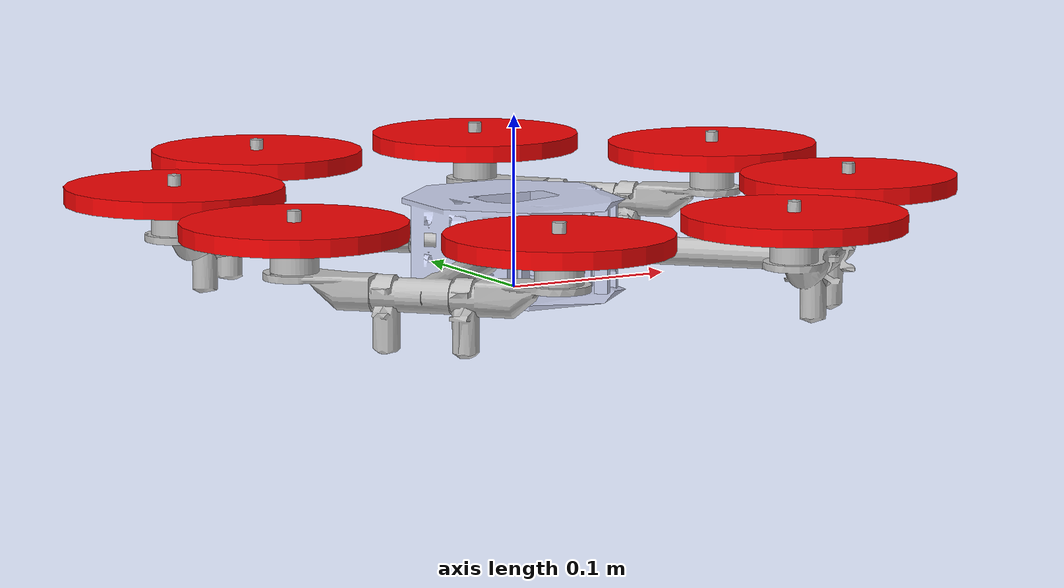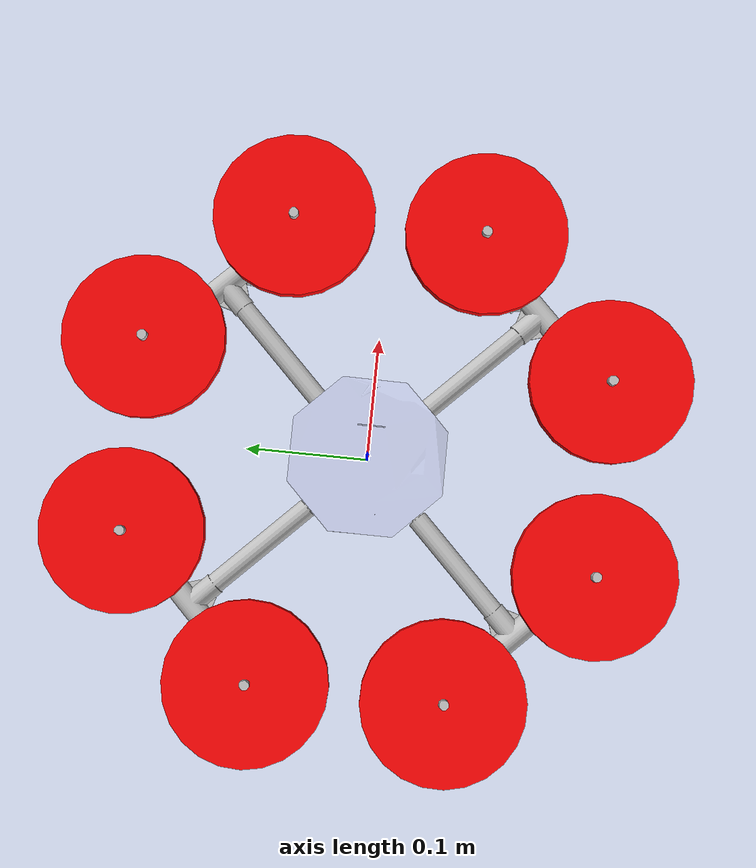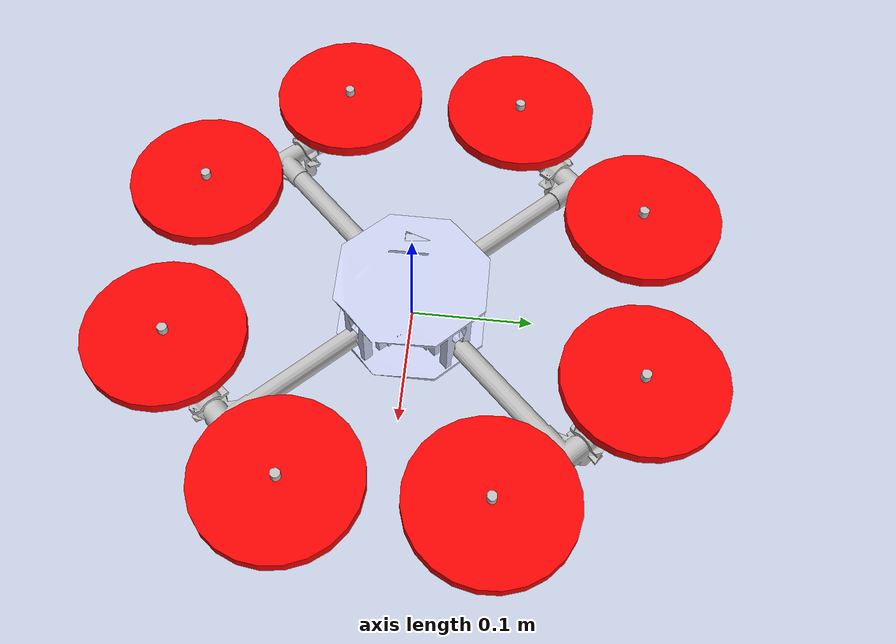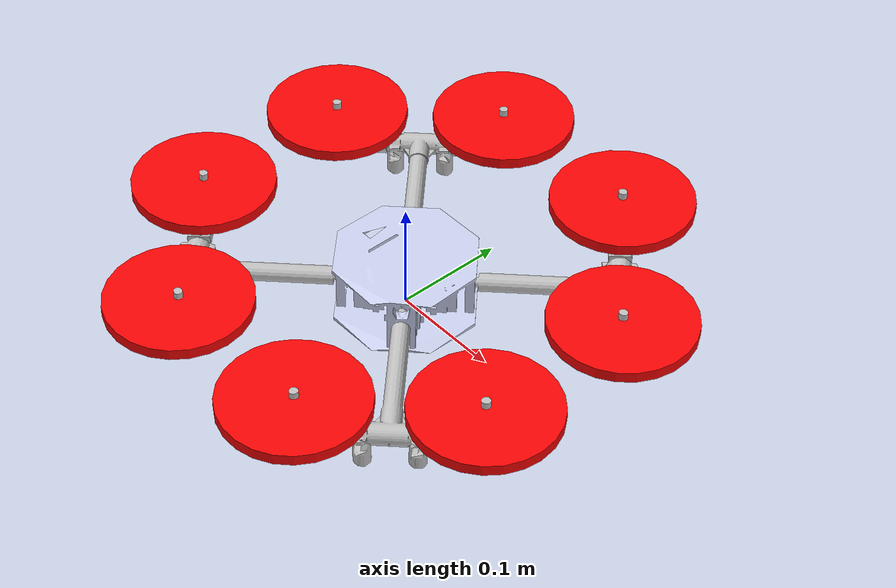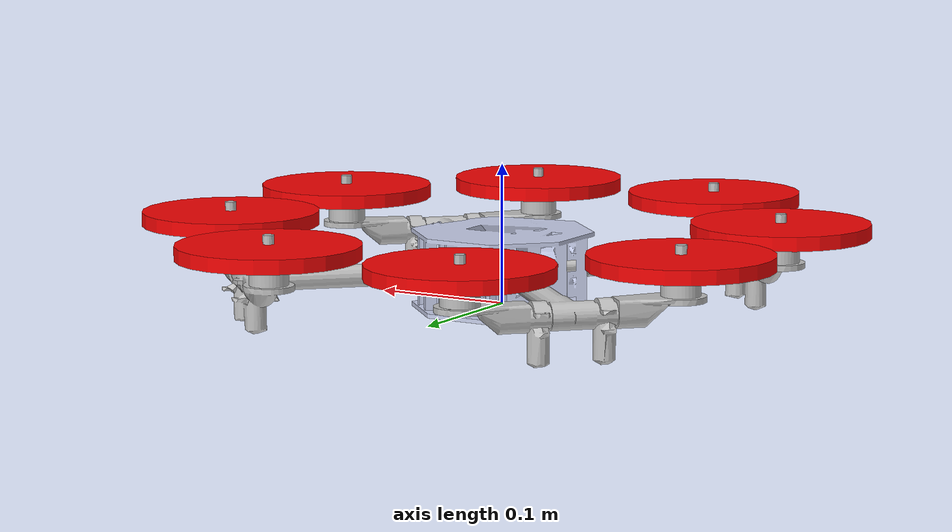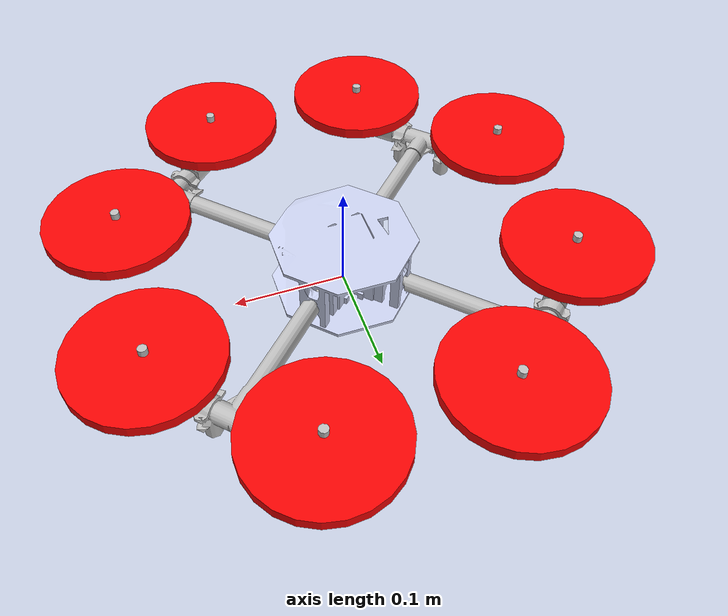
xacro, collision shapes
<?xml version="1.0"?>
<robot name="swing_drone" xmlns:xacro="http://www.ros.org/wiki/xacro">

  <!-- Dummy map link as root to avoid KDL parser warning -->
  <link name="map">
  </link>

  <!-- Fixed joint connecting map to base_link -->
  <joint name="map_to_base" type="fixed">
    <parent link="map"/>
    <child link="base_link"/>
    <origin xyz="0 0 0" rpy="0 0 0"/>
  </joint>

  <link
    name="base_link">
    <inertial>
      <origin
        xyz="0 0.0307 0"
        rpy="0 0 0" />
      <mass
        value="0.49" />
      <inertia
        ixx="0.0055"
        ixy="0"
        ixz="0"
        iyy="0.01067"
        iyz="0"
        izz="0.0055" />
    </inertial>
    <visual>
      <origin
        xyz="0 0 0"
        rpy="3.14159 0 0" />
      <geometry>
        <mesh
          filename="package://swing_drone/meshes/base_link.STL" />
      </geometry>
      <material
        name="">
        <color
          rgba="0.792156862745098 0.819607843137255 0.933333333333333 1" />
      </material>
    </visual>
    <collision>
      <origin
        xyz="0 0 0"
        rpy="3.14159 0 0" />
      <geometry>
        <mesh
          filename="package://swing_drone/meshes/base_link_new.STL" />
      </geometry>
    </collision>
  </link>

  <link
    name="imu_link">
    <inertial>
      <origin xyz="0 0 0" rpy="0 0 0"/>
      <mass value="0.001"/>
      <inertia ixx="1e-6" ixy="0" ixz="0" iyy="1e-6" iyz="0" izz="1e-6"/>
    </inertial>
    <visual>
      <origin
        xyz="0 0 0"
        rpy="0 0 0" />
      <geometry>
        <box
          size="0.01 0.01 0.01" />
      </geometry>
    </visual>
  </link>

  <joint
    name="imu_joint"
    type="fixed">
    <parent
      link="base_link" />
    <child
      link="imu_link" />
    <origin
      xyz="0 0 0.01"
      rpy="0 0 0" />
    <axis
      xyz="0 0 0" />
  </joint>

  <link
    name="fr_link">
    <inertial>
      <origin
        xyz="0 0.00839 -0.16975"
        rpy="0 0 0" />
      <mass
        value="0.0713" />
      <inertia
        ixx="0.00001"
        ixy="0"
        ixz="0"
        iyy="0.00001"
        iyz="0"
        izz="0.00001" />
    </inertial>
    <visual>
      <origin
        xyz="0 0 0"
        rpy="0 0 0" />
      <geometry>
        <mesh
          filename="package://swing_drone/meshes/arm.STL" />
      </geometry>
      <material
        name="">
        <color
          rgba="0.752941176470588 0.752941176470588 0.752941176470588 1" />
      </material>
    </visual>
    <collision>
      <origin
        xyz="0 0 0"
        rpy="0 0 0" />
      <geometry>
        <mesh
          filename="package://swing_drone/meshes/low_face_arm.STL" />
      </geometry>
    </collision>
  </link>
  <joint
    name="fr_joint"
    type="continuous">
    <origin
      xyz="0 0 0.025"
      rpy="1.5708 0 2.3562" />
    <parent
      link="base_link" />
    <child
      link="fr_link" />
    <axis
      xyz="0 0 1" />
  </joint>
  <link
    name="A_prop_link">
    <inertial>
      <origin
        xyz="0 0 0.0069037"
        rpy="0 0 0" />
      <mass
        value="0.0030458" />
      <inertia
        ixx="0.00001"
        ixy="0"
        ixz="0"
        iyy="0.00001"
        iyz="0"
        izz="0.00001" />
    </inertial>
    <visual>
      <origin
        xyz="0 0 0"
        rpy="0 0 0" />
      <geometry>
        <mesh
          filename="package://swing_drone/meshes/CCW_prop.STL" />
      </geometry>
      <material
        name="">
        <color
          rgba="0.96863 0.015686 0.015686 1" />
      </material>
    </visual>
    <collision>
      <origin
        xyz="0 0 0"
        rpy="0 0 0" />
      <geometry>
        <cylinder radius="0.0635" length="0.01" />
      </geometry>
    </collision>
  </link>
  <joint
    name="A_prop_joint"
    type="continuous">
    <origin
      xyz="-0.075 0.032789 -0.18136"
      rpy="-1.5708 0.28363 0" />
    <parent
      link="fr_link" />
    <child
      link="A_prop_link" />
    <axis
      xyz="0 0 1" />
  </joint>
  <link
    name="B_prop_link">
    <inertial>
      <origin
        xyz="0 0 0.0069036"
        rpy="0 0 0" />
      <mass
        value="0.0030461" />
      <inertia
        ixx="0.00001"
        ixy="0"
        ixz="0"
        iyy="0.00001"
        iyz="0"
        izz="0.00001" />
    </inertial>
    <visual>
      <origin
        xyz="0 0 0"
        rpy="0 0 0" />
      <geometry>
        <mesh
          filename="package://swing_drone/meshes/CW_prop.STL" />
      </geometry>
      <material
        name="">
        <color
          rgba="0.96863 0.015686 0.015686 1" />
      </material>
    </visual>
    <collision>
      <origin
        xyz="0 0 0"
        rpy="0 0 0" />
      <geometry>
        <cylinder radius="0.0635" length="0.01" />
      </geometry>
    </collision>
  </link>
  <joint
    name="B_prop_joint"
    type="continuous">
    <origin
      xyz="0.075 0.032789 -0.18136"
      rpy="-1.5708 -0.94937 0" />
    <parent
      link="fr_link" />
    <child
      link="B_prop_link" />
    <axis
      xyz="0 0 1" />
  </joint>
  <link
    name="br_link">
    <inertial>
      <origin
        xyz="0 0.00838518216887453 -0.169743641529002"
        rpy="0 0 0" />
      <mass
        value="0.0713" />
      <inertia
        ixx="0.00001"
        ixy="0"
        ixz="0"
        iyy="0.00001"
        iyz="0"
        izz="0.00001" />
    </inertial>
    <visual>
      <origin
        xyz="0 0 0"
        rpy="0 0 0" />
      <geometry>
        <mesh
          filename="package://swing_drone/meshes/arm.STL" />
      </geometry>
      <material
        name="">
        <color
          rgba="0.752941176470588 0.752941176470588 0.752941176470588 1" />
      </material>
    </visual>
    <collision>
      <origin
        xyz="0 0 0"
        rpy="0 0 0" />
      <geometry>
        <mesh
          filename="package://swing_drone/meshes/low_face_arm.STL" />
      </geometry>
    </collision>
  </link>
  <joint
    name="br_joint"
    type="continuous">
    <origin
      xyz="0 0 0.025"
      rpy="1.5707963267949 0 0.785398163397444" />
    <parent
      link="base_link" />
    <child
      link="br_link" />
    <axis
      xyz="0 0 1" />
  </joint>
  <link
    name="C_prop_link">
    <inertial>
      <origin
        xyz="0 0 0.00690354838979317"
        rpy="0 0 0" />
      <mass
        value="0.00304576429500371" />
      <inertia
        ixx="0.00001"
        ixy="0"
        ixz="0"
        iyy="0.00001"
        iyz="0"
        izz="0.00001" />
    </inertial>
    <visual>
      <origin
        xyz="0 0 0"
        rpy="0 0 0" />
      <geometry>
        <mesh
          filename="package://swing_drone/meshes/CCW_prop.STL" />
      </geometry>
      <material
        name="">
        <color
          rgba="0.968627450980392 0.0156862745098039 0.0156862745098039 1" />
      </material>
    </visual>
    <collision>
      <origin
        xyz="0 0 0"
        rpy="0 0 0" />
      <geometry>
        <cylinder radius="0.0635" length="0.01" />
      </geometry>
    </collision>
  </link>
  <joint
    name="C_prop_joint"
    type="continuous">
    <origin
      xyz="-0.075 0.032789 -0.18136"
      rpy="1.5708 1.2519 3.1416" />
    <parent
      link="br_link" />
    <child
      link="C_prop_link" />
    <axis
      xyz="0 0 1" />
  </joint>
  <link
    name="D_prop_link">
    <inertial>
      <origin
        xyz="0 0 0.0069035097240563"
        rpy="0 0 0" />
      <mass
        value="0.0030460170283791" />
      <inertia
        ixx="0.00001"
        ixy="0"
        ixz="0"
        iyy="0.00001"
        iyz="0"
        izz="0.00001" />
    </inertial>
    <visual>
      <origin
        xyz="0 0 0"
        rpy="0 0 0" />
      <geometry>
        <mesh
          filename="package://swing_drone/meshes/CW_prop.STL" />
      </geometry>
      <material
        name="">
        <color
          rgba="0.968627450980392 0.0156862745098039 0.0156862745098039 1" />
      </material>
    </visual>
    <collision>
      <origin
        xyz="0 0 0"
        rpy="0 0 0" />
      <geometry>
        <cylinder radius="0.0635" length="0.01" />
      </geometry>
    </collision>
  </link>
  <joint
    name="D_prop_joint"
    type="continuous">
    <origin
      xyz="0.075 0.032789 -0.18136"
      rpy="1.5708 0.2674 -3.1416" />
    <parent
      link="br_link" />
    <child
      link="D_prop_link" />
    <axis
      xyz="0 0 1" />
  </joint>
  <link
    name="bl_link">
    <inertial>
      <origin
        xyz="0 0.00838518201458557 -0.169743641788305"
        rpy="0 0 0" />
      <mass
        value="0.0713" />
      <inertia
        ixx="0.00001"
        ixy="0"
        ixz="0"
        iyy="0.00001"
        iyz="0"
        izz="0.00001" />
    </inertial>
    <visual>
      <origin
        xyz="0 0 0"
        rpy="0 0 0" />
      <geometry>
        <mesh
          filename="package://swing_drone/meshes/arm.STL" />
      </geometry>
      <material
        name="">
        <color
          rgba="0.752941176470588 0.752941176470588 0.752941176470588 1" />
      </material>
    </visual>
    <collision>
      <origin
        xyz="0 0 0"
        rpy="0 0 0" />
      <geometry>
        <mesh
          filename="package://swing_drone/meshes/low_face_arm.STL" />
      </geometry>
    </collision>
  </link>
  <joint
    name="bl_joint"
    type="continuous">
    <origin
      xyz="0 0 0.025"
      rpy="1.5707963267949 0 -0.785398163397454" />
    <parent
      link="base_link" />
    <child
      link="bl_link" />
    <axis
      xyz="0 0 1" />
  </joint>
  <link
    name="E_prop_link">
    <inertial>
      <origin
        xyz="0 0 0.00690385853098646"
        rpy="0 0 0" />
      <mass
        value="0.00304648811584682" />
      <inertia
        ixx="0.00001"
        ixy="0"
        ixz="0"
        iyy="0.00001"
        iyz="0"
        izz="0.00001" />
    </inertial>
    <visual>
      <origin
        xyz="0 0 0"
        rpy="0 0 0" />
      <geometry>
        <mesh
          filename="package://swing_drone/meshes/CCW_prop.STL" />
      </geometry>
      <material
        name="">
        <color
          rgba="0.968627450980392 0.0156862745098039 0.0156862745098039 1" />
      </material>
    </visual>
    <collision>
      <origin
        xyz="0 0 0"
        rpy="0 0 0" />
      <geometry>
        <cylinder radius="0.0635" length="0.01" />
      </geometry>
    </collision>
  </link>
  <joint
    name="E_prop_joint"
    type="continuous">
    <origin
      xyz="-0.075 0.032789 -0.18136"
      rpy="1.5708 -0.4532 -3.1416" />
    <parent
      link="bl_link" />
    <child
      link="E_prop_link" />
    <axis
      xyz="0 0 1" />
  </joint>
  <link
    name="F_prop_link">
    <inertial>
      <origin
        xyz="0 0 0.00690341554333757"
        rpy="0 0 0" />
      <mass
        value="0.00304581013536126" />
      <inertia
        ixx="0.00001"
        ixy="0"
        ixz="0"
        iyy="0.00001"
        iyz="0"
        izz="0.00001" />
    </inertial>
    <visual>
      <origin
        xyz="0 0 0"
        rpy="0 0 0" />
      <geometry>
        <mesh
          filename="package://swing_drone/meshes/CW_prop.STL" />
      </geometry>
      <material
        name="">
        <color
          rgba="0.968627450980392 0.0156862745098039 0.0156862745098039 1" />
      </material>
    </visual>
    <collision>
      <origin
        xyz="0 0 0"
        rpy="0 0 0" />
      <geometry>
        <cylinder radius="0.0635" length="0.01" />
      </geometry>
    </collision>
  </link>
  <joint
    name="F_prop_joint"
    type="continuous">
    <origin
      xyz="0.075 0.032789 -0.18136"
      rpy="-1.5708 0.44248 0" />
    <parent
      link="bl_link" />
    <child
      link="F_prop_link" />
    <axis
      xyz="0 0 1" />
  </joint>
  <link
    name="fl_link">
    <inertial>
      <origin
        xyz="0 0.00838518205590654 -0.169743641875677"
        rpy="0 0 0" />
      <mass
        value="0.0713" />
      <inertia
        ixx="0.00001"
        ixy="0"
        ixz="0"
        iyy="0.00001"
        iyz="0"
        izz="0.00001" />
    </inertial>
    <visual>
      <origin
        xyz="0 0 0"
        rpy="0 0 0" />
      <geometry>
        <mesh
          filename="package://swing_drone/meshes/arm.STL" />
      </geometry>
      <material
        name="">
        <color
          rgba="0.752941176470588 0.752941176470588 0.752941176470588 1" />
      </material>
    </visual>
    <collision>
      <origin
        xyz="0 0 0"
        rpy="0 0 0" />
      <geometry>
        <mesh
          filename="package://swing_drone/meshes/low_face_arm.STL" />
      </geometry>
    </collision>
  </link>
  <joint
    name="fl_joint"
    type="continuous">
    <origin
      xyz="0 0 0.025"
      rpy="1.5707963267949 0 -2.35619449019234" />
    <parent
      link="base_link" />
    <child
      link="fl_link" />
    <axis
      xyz="0 0 1" />
  </joint>
  <link
    name="G_prop_link">
    <inertial>
      <origin
        xyz="0 0 0.00690342839194055"
        rpy="0 0 0" />
      <mass
        value="0.00304542470661797" />
      <inertia
        ixx="0.00001"
        ixy="0"
        ixz="0"
        iyy="0.00001"
        iyz="0"
        izz="0.00001" />
    </inertial>
    <visual>
      <origin
        xyz="0 0 0"
        rpy="0 0 0" />
      <geometry>
        <mesh
          filename="package://swing_drone/meshes/CCW_prop.STL" />
      </geometry>
      <material
        name="">
        <color
          rgba="0.968627450980392 0.0156862745098039 0.0156862745098039 1" />
      </material>
    </visual>
    <collision>
      <origin
        xyz="0 0 0"
        rpy="0 0 0" />
      <geometry>
        <cylinder radius="0.0635" length="0.01" />
      </geometry>
    </collision>
  </link>
  <joint
    name="G_prop_joint"
    type="continuous">
    <origin
      xyz="-0.075 0.032789 -0.18136"
      rpy="-1.5708 0.26204 0" />
    <parent
      link="fl_link" />
    <child
      link="G_prop_link" />
    <axis
      xyz="0 0 1" />
  </joint>
  <link
    name="H_prop_link">
    <inertial>
      <origin
        xyz="0 0 0.00690356262000323"
        rpy="0 0 0" />
      <mass
        value="0.00304597813849953" />
      <inertia
        ixx="0.00001"
        ixy="0"
        ixz="0"
        iyy="0.00001"
        iyz="0"
        izz="0.00001" />
    </inertial>
    <visual>
      <origin
        xyz="0 0 0"
        rpy="0 0 0" />
      <geometry>
        <mesh
          filename="package://swing_drone/meshes/CW_prop.STL" />
      </geometry>
      <material
        name="">
        <color
          rgba="0.968627450980392 0.0156862745098039 0.0156862745098039 1" />
      </material>
    </visual>
    <collision>
      <origin
        xyz="0 0 0"
        rpy="0 0 0" />
      <geometry>
        <cylinder radius="0.0635" length="0.01" />
      </geometry>
    </collision>
  </link>
  <joint
    name="H_prop_joint"
    type="continuous">
    <origin
      xyz="0.075 0.032789 -0.18136"
      rpy="1.5708 0.93504 -3.1416" />
    <parent
      link="fl_link" />
    <child
      link="H_prop_link" />
    <axis
      xyz="0 0 1" />
  </joint>

</robot>
